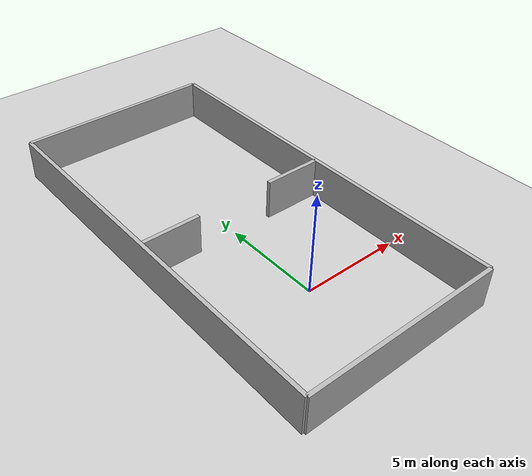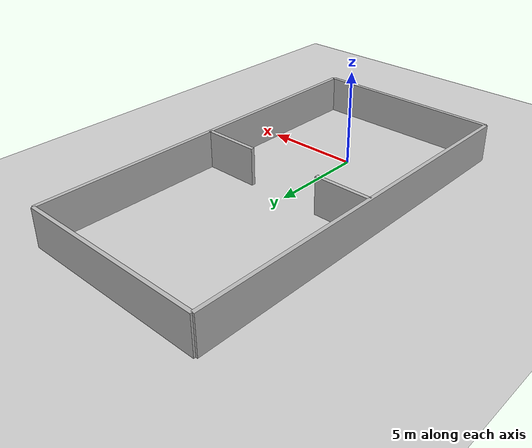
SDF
<?xml version="1.0" ?>
<sdf version="1.4">
  <world name="default">
    <physics type="ode">
      <gravity>0 0 -9.81</gravity>
      <ode>
        <solver>
          <type>quick</type>
          <iters>20</iters>
          <sor>1.0</sor>
        </solver>
        <constraints>
          <cfm>0.0</cfm>
          <erp>0.2</erp>
          <contact_max_correcting_vel>100.0</contact_max_correcting_vel>
          <contact_surface_layer>0.0</contact_surface_layer>
        </constraints>
      </ode>
      <real_time_update_rate>1000</real_time_update_rate>
      <max_step_size>0.001</max_step_size>
    </physics>

    <!-- A global light source -->
    <include>
      <uri>model://sun</uri>
    </include>

    <!-- A ground plane -->
    <include>
      <uri>model://ground_plane</uri>
    </include>

    <model name="wall_1_model">
      <pose>0 -5 1 0 0 0</pose>
      <static>true</static>
      <link name="wall_1_body">
        <inertial>
          <mass>1.0</mass>
          <inertia>
            <ixx>1.0</ixx>
            <ixy>0.0</ixy>
            <ixz>0.0</ixz>
            <iyy>1.0</iyy>
            <iyz>0.0</iyz>
            <izz>1.0</izz>
          </inertia>
        </inertial>
        <collision name="collision">
          <geometry>
            <box>
              <size>10 0.2 2</size>
            </box>
          </geometry>
        </collision>
        <visual name="visual">
          <geometry>
            <box>
              <size>10 0.2 2</size>
            </box>
          </geometry>
        </visual>
      </link>
    </model>
    <model name="wall_2_model">
      <pose>0 15 1 0 0 0</pose>
      <static>true</static>
      <link name="wall_2_body">
        <inertial>
          <mass>1.0</mass>
          <inertia>
            <ixx>1.0</ixx>
            <ixy>0.0</ixy>
            <ixz>0.0</ixz>
            <iyy>1.0</iyy>
            <iyz>0.0</iyz>
            <izz>1.0</izz>
          </inertia>
        </inertial>
        <collision name="collision">
          <geometry>
            <box>
              <size>10 0.2 2</size>
            </box>
          </geometry>
        </collision>
        <visual name="visual">
          <geometry>
            <box>
              <size>10 0.2 2</size>
            </box>
          </geometry>
        </visual>
      </link>
    </model>
    <model name="wall_3_model">
      <pose>-5 5 1 0 0 0</pose>
      <static>true</static>
      <link name="wall_3_body">
        <inertial>
          <mass>1.0</mass>
          <inertia>
            <ixx>1.0</ixx>
            <ixy>0.0</ixy>
            <ixz>0.0</ixz>
            <iyy>1.0</iyy>
            <iyz>0.0</iyz>
            <izz>1.0</izz>
          </inertia>
        </inertial>
        <collision name="collision">
          <geometry>
            <box>
              <size>0.2 20 2</size>
            </box>
          </geometry>
        </collision>
        <visual name="visual">
          <geometry>
            <box>
              <size>0.2 20 2</size>
            </box>
          </geometry>
        </visual>
      </link>
    </model>
    <model name="wall_4_model">
      <pose>5 5 1 0 0 0</pose>
      <static>true</static>
      <link name="wall_4_body">
        <inertial>
          <mass>1.0</mass>
          <inertia>
            <ixx>1.0</ixx>
            <ixy>0.0</ixy>
            <ixz>0.0</ixz>
            <iyy>1.0</iyy>
            <iyz>0.0</iyz>
            <izz>1.0</izz>
          </inertia>
        </inertial>
        <collision name="collision">
          <geometry>
            <box>
              <size>0.2 20 2</size>
            </box>
          </geometry>
        </collision>
        <visual name="visual">
          <geometry>
            <box>
              <size>0.2 20 2</size>
            </box>
          </geometry>
        </visual>
      </link>
    </model>
    <model name="wall_5_model">
      <pose>-3.5 5 1 0 0 0</pose>
      <static>true</static>
      <link name="wall_5_body">
        <inertial>
          <mass>1.0</mass>
          <inertia>
            <ixx>1.0</ixx>
            <ixy>0.0</ixy>
            <ixz>0.0</ixz>
            <iyy>1.0</iyy>
            <iyz>0.0</iyz>
            <izz>1.0</izz>
          </inertia>
        </inertial>
        <collision name="collision">
          <geometry>
            <box>
              <size>3 0.2 2</size>
            </box>
          </geometry>
        </collision>
        <visual name="visual">
          <geometry>
            <box>
              <size>3 0.2 2</size>
            </box>
          </geometry>
        </visual>
      </link>
    </model>
    <model name="wall_6_model">
      <pose>3.5 5 1 0 0 0</pose>
      <static>true</static>
      <link name="wall_6_body">
        <inertial>
          <mass>1.0</mass>
          <inertia>
            <ixx>1.0</ixx>
            <ixy>0.0</ixy>
            <ixz>0.0</ixz>
            <iyy>1.0</iyy>
            <iyz>0.0</iyz>
            <izz>1.0</izz>
          </inertia>
        </inertial>
        <collision name="collision">
          <geometry>
            <box>
              <size>3 0.2 2</size>
            </box>
          </geometry>
        </collision>
        <visual name="visual">
          <geometry>
            <box>
              <size>3 0.2 2</size>
            </box>
          </geometry>
        </visual>
      </link>
    </model>
  </world>
</sdf>
